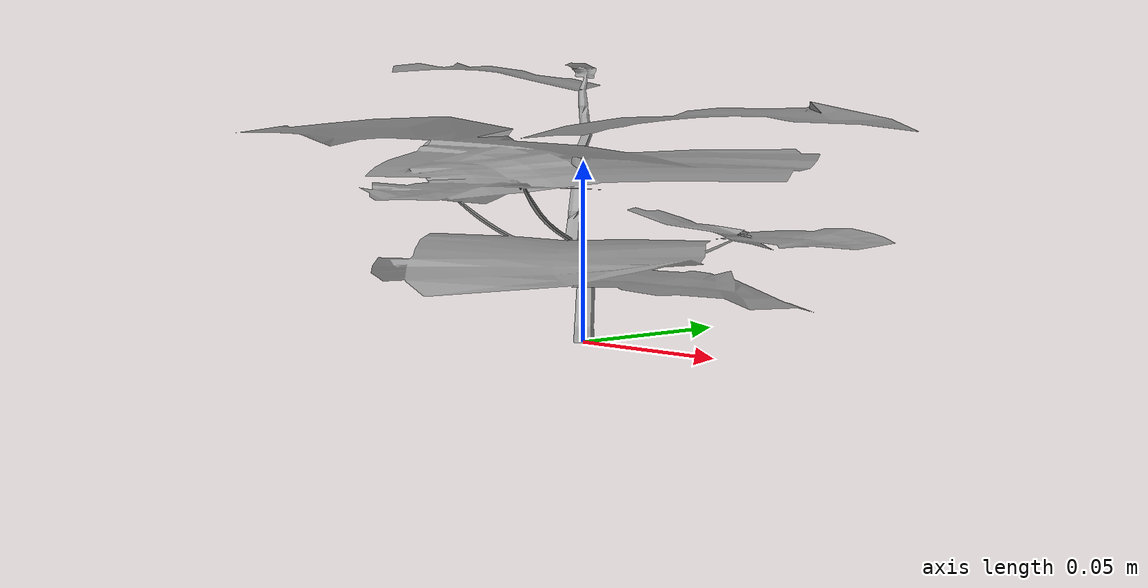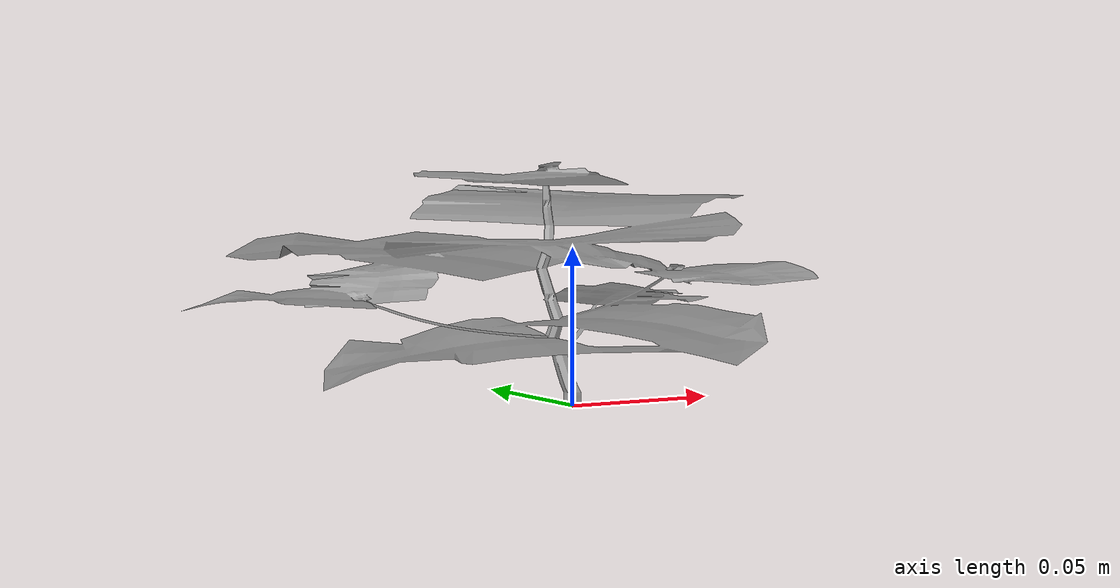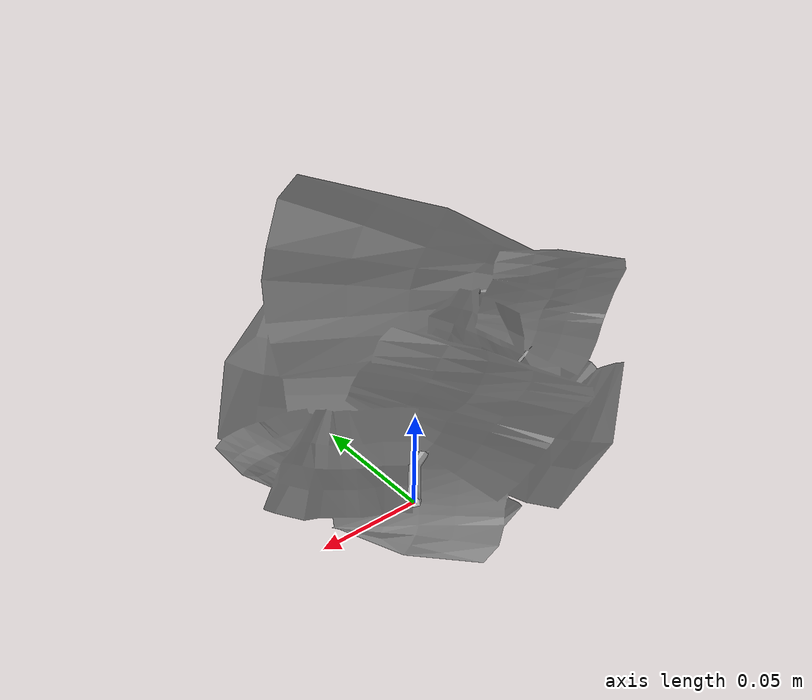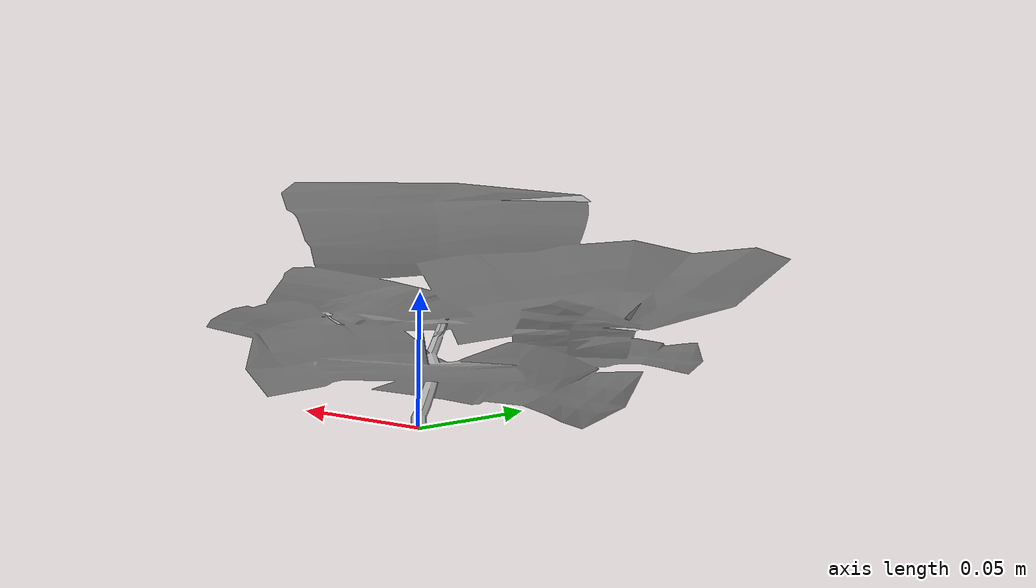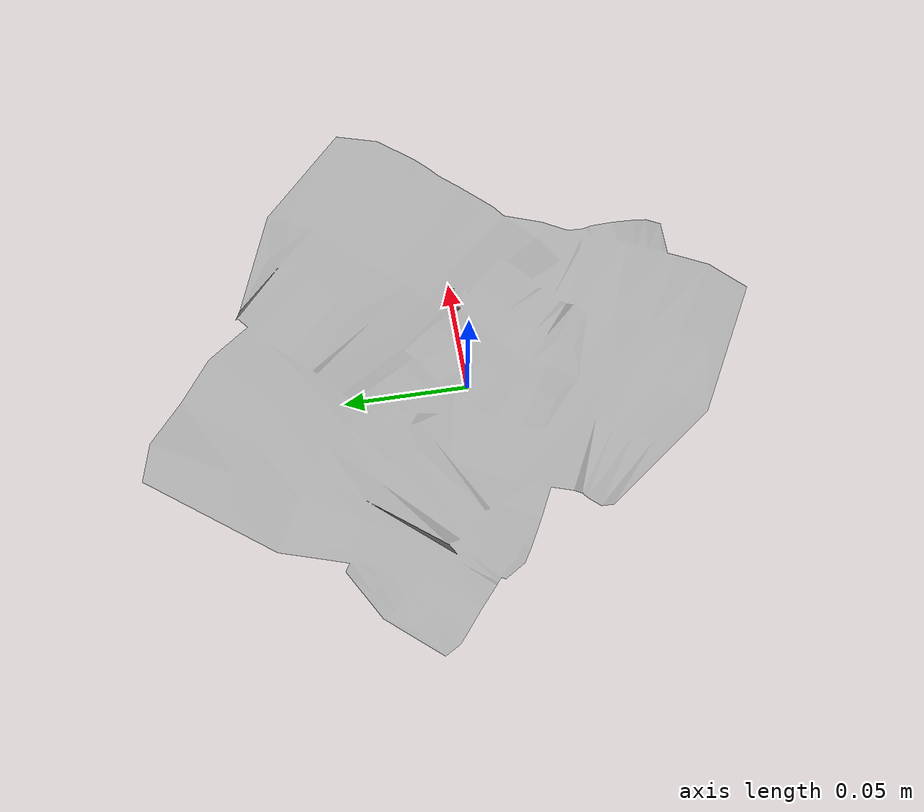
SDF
<?xml version="1.0"?>
<sdf version="1.6">
  <model name="cotton2">
    <static>true</static>
    <link name="link">
      <visual name="visual">
        <geometry>
          <mesh>
            <uri>model://cotton2/cotton2.dae</uri>
            <scale>1 1 0.3</scale>
          </mesh>
        </geometry>
      </visual>
    </link>
  </model>
</sdf>
